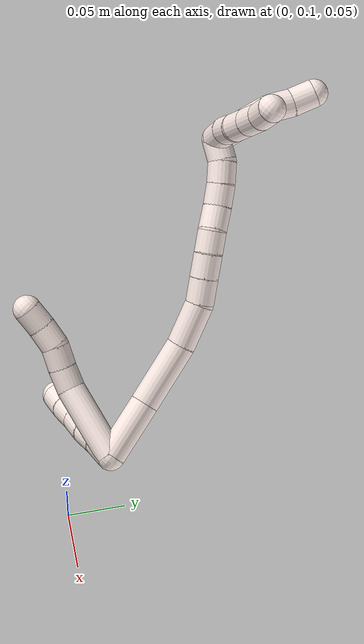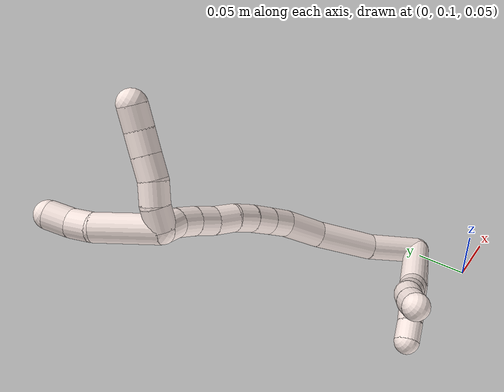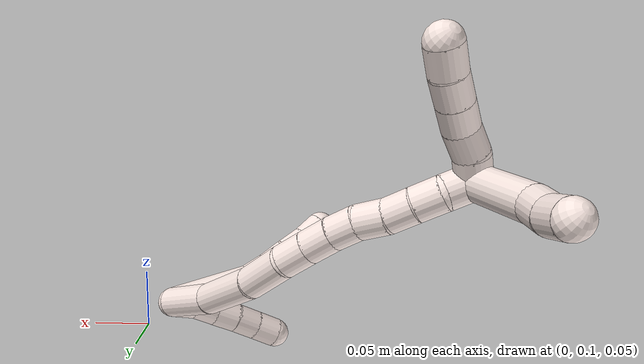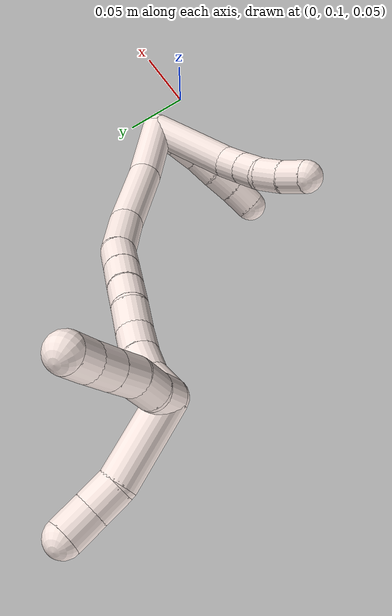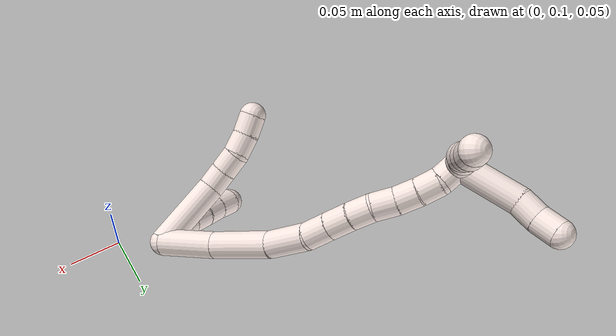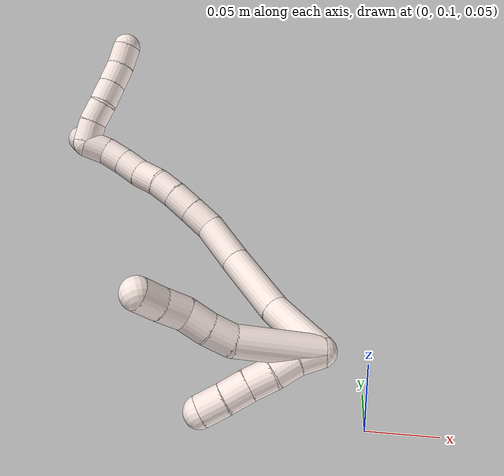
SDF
<sdf version="1.7">
 <world name="default">
  <model name="11">
   <static>0</static>
   <link name="11">
    <collision name="collision-cylinder-e_1_2_8">
     <pose>-0.031243 0.01158 0.008782 -0.921923 -1.1354 0.613458</pose>
     <geometry><cylinder><radius>0.0125</radius><length>0.068916</length></cylinder></geometry>
     <surface>
      <friction><ode><mu>1.16</mu><mu2>1.16</mu2><slip1>0</slip1><slip2>0</slip2></ode></friction>
      <contact><ode><kp>1e+06</kp><kd>1</kd><max_vel>0</max_vel><min_depth>0.001</min_depth></ode></contact>
     </surface>
    </collision>
    <visual name="visual-cylinder-e_1_2_8">
     <pose>-0.031243 0.01158 0.008782 -0.921923 -1.1354 0.613458</pose>
     <geometry><cylinder><radius>0.0125</radius><length>0.068916</length></cylinder></geometry>
     <material><ambient>1 0.933333 0.909804 1</ambient></material>
    </visual>
    <collision name="collision-cylinder-e_2_8_9">
     <pose>-0.07144 0.02428 0.022447 -0.225564 -1.06076 0.132646</pose>
     <geometry><cylinder><radius>0.0125</radius><length>0.02052</length></cylinder></geometry>
     <surface>
      <friction><ode><mu>1.16</mu><mu2>1.16</mu2><slip1>0</slip1><slip2>0</slip2></ode></friction>
      <contact><ode><kp>1e+06</kp><kd>1</kd><max_vel>0</max_vel><min_depth>0.001</min_depth></ode></contact>
     </surface>
    </collision>
    <visual name="visual-cylinder-e_2_8_9">
     <pose>-0.07144 0.02428 0.022447 -0.225564 -1.06076 0.132646</pose>
     <geometry><cylinder><radius>0.0125</radius><length>0.02052</length></cylinder></geometry>
     <material><ambient>1 0.933333 0.909804 1</ambient></material>
    </visual>
    <collision name="collision-cylinder-e_3_9_10">
     <pose>-0.088785 0.025749 0.032962 -0.061876 -0.978709 0.03296</pose>
     <geometry><cylinder><radius>0.0125</radius><length>0.020223</length></cylinder></geometry>
     <surface>
      <friction><ode><mu>1.16</mu><mu2>1.16</mu2><slip1>0</slip1><slip2>0</slip2></ode></friction>
      <contact><ode><kp>1e+06</kp><kd>1</kd><max_vel>0</max_vel><min_depth>0.001</min_depth></ode></contact>
     </surface>
    </collision>
    <visual name="visual-cylinder-e_3_9_10">
     <pose>-0.088785 0.025749 0.032962 -0.061876 -0.978709 0.03296</pose>
     <geometry><cylinder><radius>0.0125</radius><length>0.020223</length></cylinder></geometry>
     <material><ambient>1 0.933333 0.909804 1</ambient></material>
    </visual>
    <collision name="collision-cylinder-e_4_10_11">
     <pose>-0.10688 0.026364 0.04153 -0.090334 -1.2759 0.066991</pose>
     <geometry><cylinder><radius>0.0125</radius><length>0.020284</length></cylinder></geometry>
     <surface>
      <friction><ode><mu>1.16</mu><mu2>1.16</mu2><slip1>0</slip1><slip2>0</slip2></ode></friction>
      <contact><ode><kp>1e+06</kp><kd>1</kd><max_vel>0</max_vel><min_depth>0.001</min_depth></ode></contact>
     </surface>
    </collision>
    <visual name="visual-cylinder-e_4_10_11">
     <pose>-0.10688 0.026364 0.04153 -0.090334 -1.2759 0.066991</pose>
     <geometry><cylinder><radius>0.0125</radius><length>0.020284</length></cylinder></geometry>
     <material><ambient>1 0.933333 0.909804 1</ambient></material>
    </visual>
    <collision name="collision-cylinder-e_5_11_6">
     <pose>-0.126236 0.025678 0.047015 0.357173 -1.29597 -0.271619</pose>
     <geometry><cylinder><radius>0.0125</radius><length>0.020056</length></cylinder></geometry>
     <surface>
      <friction><ode><mu>1.16</mu><mu2>1.16</mu2><slip1>0</slip1><slip2>0</slip2></ode></friction>
      <contact><ode><kp>1e+06</kp><kd>1</kd><max_vel>0</max_vel><min_depth>0.001</min_depth></ode></contact>
     </surface>
    </collision>
    <visual name="visual-cylinder-e_5_11_6">
     <pose>-0.126236 0.025678 0.047015 0.357173 -1.29597 -0.271619</pose>
     <geometry><cylinder><radius>0.0125</radius><length>0.020056</length></cylinder></geometry>
     <material><ambient>1 0.933333 0.909804 1</ambient></material>
    </visual>
    <collision name="collision-cylinder-e_1_2_12">
     <pose>-0.007981 0.006002 -0.000531 -1.65907 -0.924098 0.996489</pose>
     <geometry><cylinder><radius>0.0125</radius><length>0.02</length></cylinder></geometry>
     <surface>
      <friction><ode><mu>1.16</mu><mu2>1.16</mu2><slip1>0</slip1><slip2>0</slip2></ode></friction>
      <contact><ode><kp>1e+06</kp><kd>1</kd><max_vel>0</max_vel><min_depth>0.001</min_depth></ode></contact>
     </surface>
    </collision>
    <visual name="visual-cylinder-e_1_2_12">
     <pose>-0.007981 0.006002 -0.000531 -1.65907 -0.924098 0.996489</pose>
     <geometry><cylinder><radius>0.0125</radius><length>0.02</length></cylinder></geometry>
     <material><ambient>1 0.933333 0.909804 1</ambient></material>
    </visual>
    <collision name="collision-cylinder-e_2_12_13">
     <pose>-0.022549 0.019211 -0.003225 -1.8623 -0.719131 0.935682</pose>
     <geometry><cylinder><radius>0.0125</radius><length>0.02</length></cylinder></geometry>
     <surface>
      <friction><ode><mu>1.16</mu><mu2>1.16</mu2><slip1>0</slip1><slip2>0</slip2></ode></friction>
      <contact><ode><kp>1e+06</kp><kd>1</kd><max_vel>0</max_vel><min_depth>0.001</min_depth></ode></contact>
     </surface>
    </collision>
    <visual name="visual-cylinder-e_2_12_13">
     <pose>-0.022549 0.019211 -0.003225 -1.8623 -0.719131 0.935682</pose>
     <geometry><cylinder><radius>0.0125</radius><length>0.02</length></cylinder></geometry>
     <material><ambient>1 0.933333 0.909804 1</ambient></material>
    </visual>
    <collision name="collision-cylinder-e_3_13_14">
     <pose>-0.035535 0.034035 -0.0064 -1.70303 -0.694333 0.783553</pose>
     <geometry><cylinder><radius>0.0125</radius><length>0.02</length></cylinder></geometry>
     <surface>
      <friction><ode><mu>1.16</mu><mu2>1.16</mu2><slip1>0</slip1><slip2>0</slip2></ode></friction>
      <contact><ode><kp>1e+06</kp><kd>1</kd><max_vel>0</max_vel><min_depth>0.001</min_depth></ode></contact>
     </surface>
    </collision>
    <visual name="visual-cylinder-e_3_13_14">
     <pose>-0.035535 0.034035 -0.0064 -1.70303 -0.694333 0.783553</pose>
     <geometry><cylinder><radius>0.0125</radius><length>0.02</length></cylinder></geometry>
     <material><ambient>1 0.933333 0.909804 1</ambient></material>
    </visual>
    <collision name="collision-cylinder-e_4_14_15">
     <pose>-0.048256 0.049196 -0.009181 -1.80093 -0.684426 0.844598</pose>
     <geometry><cylinder><radius>0.0125</radius><length>0.02</length></cylinder></geometry>
     <surface>
      <friction><ode><mu>1.16</mu><mu2>1.16</mu2><slip1>0</slip1><slip2>0</slip2></ode></friction>
      <contact><ode><kp>1e+06</kp><kd>1</kd><max_vel>0</max_vel><min_depth>0.001</min_depth></ode></contact>
     </surface>
    </collision>
    <visual name="visual-cylinder-e_4_14_15">
     <pose>-0.048256 0.049196 -0.009181 -1.80093 -0.684426 0.844598</pose>
     <geometry><cylinder><radius>0.0125</radius><length>0.02</length></cylinder></geometry>
     <material><ambient>1 0.933333 0.909804 1</ambient></material>
    </visual>
    <collision name="collision-cylinder-e_5_15_5">
     <pose>-0.060687 0.064574 -0.012088 -1.71531 -0.657207 0.75095</pose>
     <geometry><cylinder><radius>0.0125</radius><length>0.02</length></cylinder></geometry>
     <surface>
      <friction><ode><mu>1.16</mu><mu2>1.16</mu2><slip1>0</slip1><slip2>0</slip2></ode></friction>
      <contact><ode><kp>1e+06</kp><kd>1</kd><max_vel>0</max_vel><min_depth>0.001</min_depth></ode></contact>
     </surface>
    </collision>
    <visual name="visual-cylinder-e_5_15_5">
     <pose>-0.060687 0.064574 -0.012088 -1.71531 -0.657207 0.75095</pose>
     <geometry><cylinder><radius>0.0125</radius><length>0.02</length></cylinder></geometry>
     <material><ambient>1 0.933333 0.909804 1</ambient></material>
    </visual>
    <collision name="collision-cylinder-e_1_2_16">
     <pose>-0.002625 0.011196 0.024692 -0.425696 -0.096518 0.020875</pose>
     <geometry><cylinder><radius>0.0125</radius><length>0.054476</length></cylinder></geometry>
     <surface>
      <friction><ode><mu>1.16</mu><mu2>1.16</mu2><slip1>0</slip1><slip2>0</slip2></ode></friction>
      <contact><ode><kp>1e+06</kp><kd>1</kd><max_vel>0</max_vel><min_depth>0.001</min_depth></ode></contact>
     </surface>
    </collision>
    <visual name="visual-cylinder-e_1_2_16">
     <pose>-0.002625 0.011196 0.024692 -0.425696 -0.096518 0.020875</pose>
     <geometry><cylinder><radius>0.0125</radius><length>0.054476</length></cylinder></geometry>
     <material><ambient>1 0.933333 0.909804 1</ambient></material>
    </visual>
    <collision name="collision-cylinder-e_2_16_17">
     <pose>-0.008665 0.030273 0.078069 -0.268134 -0.114297 0.015432</pose>
     <geometry><cylinder><radius>0.0125</radius><length>0.059887</length></cylinder></geometry>
     <surface>
      <friction><ode><mu>1.16</mu><mu2>1.16</mu2><slip1>0</slip1><slip2>0</slip2></ode></friction>
      <contact><ode><kp>1e+06</kp><kd>1</kd><max_vel>0</max_vel><min_depth>0.001</min_depth></ode></contact>
     </surface>
    </collision>
    <visual name="visual-cylinder-e_2_16_17">
     <pose>-0.008665 0.030273 0.078069 -0.268134 -0.114297 0.015432</pose>
     <geometry><cylinder><radius>0.0125</radius><length>0.059887</length></cylinder></geometry>
     <material><ambient>1 0.933333 0.909804 1</ambient></material>
    </visual>
    <collision name="collision-cylinder-e_3_17_18">
     <pose>-0.017083 0.041077 0.125801 -0.152263 -0.254022 0.019481</pose>
     <geometry><cylinder><radius>0.0125</radius><length>0.039818</length></cylinder></geometry>
     <surface>
      <friction><ode><mu>1.16</mu><mu2>1.16</mu2><slip1>0</slip1><slip2>0</slip2></ode></friction>
      <contact><ode><kp>1e+06</kp><kd>1</kd><max_vel>0</max_vel><min_depth>0.001</min_depth></ode></contact>
     </surface>
    </collision>
    <visual name="visual-cylinder-e_3_17_18">
     <pose>-0.017083 0.041077 0.125801 -0.152263 -0.254022 0.019481</pose>
     <geometry><cylinder><radius>0.0125</radius><length>0.039818</length></cylinder></geometry>
     <material><ambient>1 0.933333 0.909804 1</ambient></material>
    </visual>
    <collision name="collision-cylinder-e_4_18_19">
     <pose>-0.027528 0.046054 0.154479 -0.210166 -0.504819 0.054391</pose>
     <geometry><cylinder><radius>0.0125</radius><length>0.022503</length></cylinder></geometry>
     <surface>
      <friction><ode><mu>1.16</mu><mu2>1.16</mu2><slip1>0</slip1><slip2>0</slip2></ode></friction>
      <contact><ode><kp>1e+06</kp><kd>1</kd><max_vel>0</max_vel><min_depth>0.001</min_depth></ode></contact>
     </surface>
    </collision>
    <visual name="visual-cylinder-e_4_18_19">
     <pose>-0.027528 0.046054 0.154479 -0.210166 -0.504819 0.054391</pose>
     <geometry><cylinder><radius>0.0125</radius><length>0.022503</length></cylinder></geometry>
     <material><ambient>1 0.933333 0.909804 1</ambient></material>
    </visual>
    <collision name="collision-cylinder-e_5_19_20">
     <pose>-0.038149 0.050266 0.173386 -0.228518 -0.498143 0.058362</pose>
     <geometry><cylinder><radius>0.0125</radius><length>0.021681</length></cylinder></geometry>
     <surface>
      <friction><ode><mu>1.16</mu><mu2>1.16</mu2><slip1>0</slip1><slip2>0</slip2></ode></friction>
      <contact><ode><kp>1e+06</kp><kd>1</kd><max_vel>0</max_vel><min_depth>0.001</min_depth></ode></contact>
     </surface>
    </collision>
    <visual name="visual-cylinder-e_5_19_20">
     <pose>-0.038149 0.050266 0.173386 -0.228518 -0.498143 0.058362</pose>
     <geometry><cylinder><radius>0.0125</radius><length>0.021681</length></cylinder></geometry>
     <material><ambient>1 0.933333 0.909804 1</ambient></material>
    </visual>
    <collision name="collision-cylinder-e_6_20_21">
     <pose>-0.048125 0.05515 0.191049 -0.314373 -0.49808 0.080573</pose>
     <geometry><cylinder><radius>0.0125</radius><length>0.020077</length></cylinder></geometry>
     <surface>
      <friction><ode><mu>1.16</mu><mu2>1.16</mu2><slip1>0</slip1><slip2>0</slip2></ode></friction>
      <contact><ode><kp>1e+06</kp><kd>1</kd><max_vel>0</max_vel><min_depth>0.001</min_depth></ode></contact>
     </surface>
    </collision>
    <visual name="visual-cylinder-e_6_20_21">
     <pose>-0.048125 0.05515 0.191049 -0.314373 -0.49808 0.080573</pose>
     <geometry><cylinder><radius>0.0125</radius><length>0.020077</length></cylinder></geometry>
     <material><ambient>1 0.933333 0.909804 1</ambient></material>
    </visual>
    <collision name="collision-cylinder-e_7_21_22">
     <pose>-0.05755 0.06279 0.207826 -0.529732 -0.444409 0.122412</pose>
     <geometry><cylinder><radius>0.0125</radius><length>0.021538</length></cylinder></geometry>
     <surface>
      <friction><ode><mu>1.16</mu><mu2>1.16</mu2><slip1>0</slip1><slip2>0</slip2></ode></friction>
      <contact><ode><kp>1e+06</kp><kd>1</kd><max_vel>0</max_vel><min_depth>0.001</min_depth></ode></contact>
     </surface>
    </collision>
    <visual name="visual-cylinder-e_7_21_22">
     <pose>-0.05755 0.06279 0.207826 -0.529732 -0.444409 0.122412</pose>
     <geometry><cylinder><radius>0.0125</radius><length>0.021538</length></cylinder></geometry>
     <material><ambient>1 0.933333 0.909804 1</ambient></material>
    </visual>
    <collision name="collision-cylinder-e_8_22_23">
     <pose>-0.067063 0.070674 0.224423 -0.347312 -0.510017 0.091396</pose>
     <geometry><cylinder><radius>0.0125</radius><length>0.020002</length></cylinder></geometry>
     <surface>
      <friction><ode><mu>1.16</mu><mu2>1.16</mu2><slip1>0</slip1><slip2>0</slip2></ode></friction>
      <contact><ode><kp>1e+06</kp><kd>1</kd><max_vel>0</max_vel><min_depth>0.001</min_depth></ode></contact>
     </surface>
    </collision>
    <visual name="visual-cylinder-e_8_22_23">
     <pose>-0.067063 0.070674 0.224423 -0.347312 -0.510017 0.091396</pose>
     <geometry><cylinder><radius>0.0125</radius><length>0.020002</length></cylinder></geometry>
     <material><ambient>1 0.933333 0.909804 1</ambient></material>
    </visual>
    <collision name="collision-cylinder-e_9_23_24">
     <pose>-0.07768 0.076709 0.240238 -0.382895 -0.610252 0.121941</pose>
     <geometry><cylinder><radius>0.0125</radius><length>0.020015</length></cylinder></geometry>
     <surface>
      <friction><ode><mu>1.16</mu><mu2>1.16</mu2><slip1>0</slip1><slip2>0</slip2></ode></friction>
      <contact><ode><kp>1e+06</kp><kd>1</kd><max_vel>0</max_vel><min_depth>0.001</min_depth></ode></contact>
     </surface>
    </collision>
    <visual name="visual-cylinder-e_9_23_24">
     <pose>-0.07768 0.076709 0.240238 -0.382895 -0.610252 0.121941</pose>
     <geometry><cylinder><radius>0.0125</radius><length>0.020015</length></cylinder></geometry>
     <material><ambient>1 0.933333 0.909804 1</ambient></material>
    </visual>
    <collision name="collision-cylinder-e_10_24_1">
     <pose>-0.091407 0.082791 0.253045 -0.525832 -0.925849 0.267061</pose>
     <geometry><cylinder><radius>0.0125</radius><length>0.020002</length></cylinder></geometry>
     <surface>
      <friction><ode><mu>1.16</mu><mu2>1.16</mu2><slip1>0</slip1><slip2>0</slip2></ode></friction>
      <contact><ode><kp>1e+06</kp><kd>1</kd><max_vel>0</max_vel><min_depth>0.001</min_depth></ode></contact>
     </surface>
    </collision>
    <visual name="visual-cylinder-e_10_24_1">
     <pose>-0.091407 0.082791 0.253045 -0.525832 -0.925849 0.267061</pose>
     <geometry><cylinder><radius>0.0125</radius><length>0.020002</length></cylinder></geometry>
     <material><ambient>1 0.933333 0.909804 1</ambient></material>
    </visual>
    <collision name="collision-cylinder-e_1_1_25">
     <pose>-0.089137 0.102334 0.279617 -0.658204 0.363044 -0.125204</pose>
     <geometry><cylinder><radius>0.0125</radius><length>0.057798</length></cylinder></geometry>
     <surface>
      <friction><ode><mu>1.16</mu><mu2>1.16</mu2><slip1>0</slip1><slip2>0</slip2></ode></friction>
      <contact><ode><kp>1e+06</kp><kd>1</kd><max_vel>0</max_vel><min_depth>0.001</min_depth></ode></contact>
     </surface>
    </collision>
    <visual name="visual-cylinder-e_1_1_25">
     <pose>-0.089137 0.102334 0.279617 -0.658204 0.363044 -0.125204</pose>
     <geometry><cylinder><radius>0.0125</radius><length>0.057798</length></cylinder></geometry>
     <material><ambient>1 0.933333 0.909804 1</ambient></material>
    </visual>
    <collision name="collision-cylinder-e_2_25_26">
     <pose>-0.072867 0.123564 0.307943 -0.594769 0.620972 -0.196041</pose>
     <geometry><cylinder><radius>0.0125</radius><length>0.020648</length></cylinder></geometry>
     <surface>
      <friction><ode><mu>1.16</mu><mu2>1.16</mu2><slip1>0</slip1><slip2>0</slip2></ode></friction>
      <contact><ode><kp>1e+06</kp><kd>1</kd><max_vel>0</max_vel><min_depth>0.001</min_depth></ode></contact>
     </surface>
    </collision>
    <visual name="visual-cylinder-e_2_25_26">
     <pose>-0.072867 0.123564 0.307943 -0.594769 0.620972 -0.196041</pose>
     <geometry><cylinder><radius>0.0125</radius><length>0.020648</length></cylinder></geometry>
     <material><ambient>1 0.933333 0.909804 1</ambient></material>
    </visual>
    <collision name="collision-cylinder-e_3_26_4">
     <pose>-0.061763 0.131603 0.323788 -0.358846 0.49267 -0.091146</pose>
     <geometry><cylinder><radius>0.0125</radius><length>0.021554</length></cylinder></geometry>
     <surface>
      <friction><ode><mu>1.16</mu><mu2>1.16</mu2><slip1>0</slip1><slip2>0</slip2></ode></friction>
      <contact><ode><kp>1e+06</kp><kd>1</kd><max_vel>0</max_vel><min_depth>0.001</min_depth></ode></contact>
     </surface>
    </collision>
    <visual name="visual-cylinder-e_3_26_4">
     <pose>-0.061763 0.131603 0.323788 -0.358846 0.49267 -0.091146</pose>
     <geometry><cylinder><radius>0.0125</radius><length>0.021554</length></cylinder></geometry>
     <material><ambient>1 0.933333 0.909804 1</ambient></material>
    </visual>
    <collision name="collision-cylinder-e_1_1_27">
     <pose>-0.098665 0.079022 0.265553 0.748374 0.073476 0.028864</pose>
     <geometry><cylinder><radius>0.0125</radius><length>0.02</length></cylinder></geometry>
     <surface>
      <friction><ode><mu>1.16</mu><mu2>1.16</mu2><slip1>0</slip1><slip2>0</slip2></ode></friction>
      <contact><ode><kp>1e+06</kp><kd>1</kd><max_vel>0</max_vel><min_depth>0.001</min_depth></ode></contact>
     </surface>
    </collision>
    <visual name="visual-cylinder-e_1_1_27">
     <pose>-0.098665 0.079022 0.265553 0.748374 0.073476 0.028864</pose>
     <geometry><cylinder><radius>0.0125</radius><length>0.02</length></cylinder></geometry>
     <material><ambient>1 0.933333 0.909804 1</ambient></material>
    </visual>
    <collision name="collision-cylinder-e_2_27_28">
     <pose>-0.095915 0.064263 0.27855 0.951039 0.202977 0.104783</pose>
     <geometry><cylinder><radius>0.0125</radius><length>0.02</length></cylinder></geometry>
     <surface>
      <friction><ode><mu>1.16</mu><mu2>1.16</mu2><slip1>0</slip1><slip2>0</slip2></ode></friction>
      <contact><ode><kp>1e+06</kp><kd>1</kd><max_vel>0</max_vel><min_depth>0.001</min_depth></ode></contact>
     </surface>
    </collision>
    <visual name="visual-cylinder-e_2_27_28">
     <pose>-0.095915 0.064263 0.27855 0.951039 0.202977 0.104783</pose>
     <geometry><cylinder><radius>0.0125</radius><length>0.02</length></cylinder></geometry>
     <material><ambient>1 0.933333 0.909804 1</ambient></material>
    </visual>
    <collision name="collision-cylinder-e_3_28_29">
     <pose>-0.091287 0.049795 0.29138 0.738179 0.264359 0.102768</pose>
     <geometry><cylinder><radius>0.0125</radius><length>0.02</length></cylinder></geometry>
     <surface>
      <friction><ode><mu>1.16</mu><mu2>1.16</mu2><slip1>0</slip1><slip2>0</slip2></ode></friction>
      <contact><ode><kp>1e+06</kp><kd>1</kd><max_vel>0</max_vel><min_depth>0.001</min_depth></ode></contact>
     </surface>
    </collision>
    <visual name="visual-cylinder-e_3_28_29">
     <pose>-0.091287 0.049795 0.29138 0.738179 0.264359 0.102768</pose>
     <geometry><cylinder><radius>0.0125</radius><length>0.02</length></cylinder></geometry>
     <material><ambient>1 0.933333 0.909804 1</ambient></material>
    </visual>
    <collision name="collision-cylinder-e_4_29_30">
     <pose>-0.086176 0.036704 0.30561 0.749207 0.252488 0.099719</pose>
     <geometry><cylinder><radius>0.0125</radius><length>0.02</length></cylinder></geometry>
     <surface>
      <friction><ode><mu>1.16</mu><mu2>1.16</mu2><slip1>0</slip1><slip2>0</slip2></ode></friction>
      <contact><ode><kp>1e+06</kp><kd>1</kd><max_vel>0</max_vel><min_depth>0.001</min_depth></ode></contact>
     </surface>
    </collision>
    <visual name="visual-cylinder-e_4_29_30">
     <pose>-0.086176 0.036704 0.30561 0.749207 0.252488 0.099719</pose>
     <geometry><cylinder><radius>0.0125</radius><length>0.02</length></cylinder></geometry>
     <material><ambient>1 0.933333 0.909804 1</ambient></material>
    </visual>
    <collision name="collision-cylinder-e_5_30_3">
     <pose>-0.082377 0.023353 0.319956 0.749785 0.130398 0.051373</pose>
     <geometry><cylinder><radius>0.0125</radius><length>0.02</length></cylinder></geometry>
     <surface>
      <friction><ode><mu>1.16</mu><mu2>1.16</mu2><slip1>0</slip1><slip2>0</slip2></ode></friction>
      <contact><ode><kp>1e+06</kp><kd>1</kd><max_vel>0</max_vel><min_depth>0.001</min_depth></ode></contact>
     </surface>
    </collision>
    <visual name="visual-cylinder-e_5_30_3">
     <pose>-0.082377 0.023353 0.319956 0.749785 0.130398 0.051373</pose>
     <geometry><cylinder><radius>0.0125</radius><length>0.02</length></cylinder></geometry>
     <material><ambient>1 0.933333 0.909804 1</ambient></material>
    </visual>
    <collision name="collision-sphere-3">
     <pose>-0.081077 0.016596 0.327212 0 -0 0</pose>
     <geometry><sphere><radius>0.0125</radius></sphere></geometry>
     <surface>
      <friction><ode><mu>1.16</mu><mu2>1.16</mu2><slip1>0</slip1><slip2>0</slip2></ode></friction>
      <contact><ode><kp>1e+06</kp><kd>1</kd><max_vel>0</max_vel><min_depth>0.001</min_depth></ode></contact>
     </surface>
    </collision>
    <visual name="visual-sphere-3">
     <pose>-0.081077 0.016596 0.327212 0 -0 0</pose>
     <geometry><sphere><radius>0.0125</radius></sphere></geometry>
     <material><ambient>1 0.933333 0.909804 1</ambient></material>
    </visual>
    <collision name="collision-sphere-30">
     <pose>-0.083677 0.03011 0.3127 0 -0 0</pose>
     <geometry><sphere><radius>0.0125</radius></sphere></geometry>
     <surface>
      <friction><ode><mu>1.16</mu><mu2>1.16</mu2><slip1>0</slip1><slip2>0</slip2></ode></friction>
      <contact><ode><kp>1e+06</kp><kd>1</kd><max_vel>0</max_vel><min_depth>0.001</min_depth></ode></contact>
     </surface>
    </collision>
    <visual name="visual-sphere-30">
     <pose>-0.083677 0.03011 0.3127 0 -0 0</pose>
     <geometry><sphere><radius>0.0125</radius></sphere></geometry>
     <material><ambient>1 0.933333 0.909804 1</ambient></material>
    </visual>
    <collision name="collision-sphere-29">
     <pose>-0.088674 0.043299 0.29852 0 -0 0</pose>
     <geometry><sphere><radius>0.0125</radius></sphere></geometry>
     <surface>
      <friction><ode><mu>1.16</mu><mu2>1.16</mu2><slip1>0</slip1><slip2>0</slip2></ode></friction>
      <contact><ode><kp>1e+06</kp><kd>1</kd><max_vel>0</max_vel><min_depth>0.001</min_depth></ode></contact>
     </surface>
    </collision>
    <visual name="visual-sphere-29">
     <pose>-0.088674 0.043299 0.29852 0 -0 0</pose>
     <geometry><sphere><radius>0.0125</radius></sphere></geometry>
     <material><ambient>1 0.933333 0.909804 1</ambient></material>
    </visual>
    <collision name="collision-sphere-28">
     <pose>-0.093899 0.05629 0.28424 0 -0 0</pose>
     <geometry><sphere><radius>0.0125</radius></sphere></geometry>
     <surface>
      <friction><ode><mu>1.16</mu><mu2>1.16</mu2><slip1>0</slip1><slip2>0</slip2></ode></friction>
      <contact><ode><kp>1e+06</kp><kd>1</kd><max_vel>0</max_vel><min_depth>0.001</min_depth></ode></contact>
     </surface>
    </collision>
    <visual name="visual-sphere-28">
     <pose>-0.093899 0.05629 0.28424 0 -0 0</pose>
     <geometry><sphere><radius>0.0125</radius></sphere></geometry>
     <material><ambient>1 0.933333 0.909804 1</ambient></material>
    </visual>
    <collision name="collision-sphere-27">
     <pose>-0.097931 0.072236 0.272861 0 -0 0</pose>
     <geometry><sphere><radius>0.0125</radius></sphere></geometry>
     <surface>
      <friction><ode><mu>1.16</mu><mu2>1.16</mu2><slip1>0</slip1><slip2>0</slip2></ode></friction>
      <contact><ode><kp>1e+06</kp><kd>1</kd><max_vel>0</max_vel><min_depth>0.001</min_depth></ode></contact>
     </surface>
    </collision>
    <visual name="visual-sphere-27">
     <pose>-0.097931 0.072236 0.272861 0 -0 0</pose>
     <geometry><sphere><radius>0.0125</radius></sphere></geometry>
     <material><ambient>1 0.933333 0.909804 1</ambient></material>
    </visual>
    <collision name="collision-sphere-4">
     <pose>-0.056666 0.134938 0.332679 0 -0 0</pose>
     <geometry><sphere><radius>0.0125</radius></sphere></geometry>
     <surface>
      <friction><ode><mu>1.16</mu><mu2>1.16</mu2><slip1>0</slip1><slip2>0</slip2></ode></friction>
      <contact><ode><kp>1e+06</kp><kd>1</kd><max_vel>0</max_vel><min_depth>0.001</min_depth></ode></contact>
     </surface>
    </collision>
    <visual name="visual-sphere-4">
     <pose>-0.056666 0.134938 0.332679 0 -0 0</pose>
     <geometry><sphere><radius>0.0125</radius></sphere></geometry>
     <material><ambient>1 0.933333 0.909804 1</ambient></material>
    </visual>
    <collision name="collision-sphere-26">
     <pose>-0.06686 0.128269 0.314898 0 -0 0</pose>
     <geometry><sphere><radius>0.0125</radius></sphere></geometry>
     <surface>
      <friction><ode><mu>1.16</mu><mu2>1.16</mu2><slip1>0</slip1><slip2>0</slip2></ode></friction>
      <contact><ode><kp>1e+06</kp><kd>1</kd><max_vel>0</max_vel><min_depth>0.001</min_depth></ode></contact>
     </surface>
    </collision>
    <visual name="visual-sphere-26">
     <pose>-0.06686 0.128269 0.314898 0 -0 0</pose>
     <geometry><sphere><radius>0.0125</radius></sphere></geometry>
     <material><ambient>1 0.933333 0.909804 1</ambient></material>
    </visual>
    <collision name="collision-sphere-25">
     <pose>-0.078874 0.118859 0.300988 0 -0 0</pose>
     <geometry><sphere><radius>0.0125</radius></sphere></geometry>
     <surface>
      <friction><ode><mu>1.16</mu><mu2>1.16</mu2><slip1>0</slip1><slip2>0</slip2></ode></friction>
      <contact><ode><kp>1e+06</kp><kd>1</kd><max_vel>0</max_vel><min_depth>0.001</min_depth></ode></contact>
     </surface>
    </collision>
    <visual name="visual-sphere-25">
     <pose>-0.078874 0.118859 0.300988 0 -0 0</pose>
     <geometry><sphere><radius>0.0125</radius></sphere></geometry>
     <material><ambient>1 0.933333 0.909804 1</ambient></material>
    </visual>
    <collision name="collision-sphere-1">
     <pose>-0.099399 0.085809 0.258245 0 -0 0</pose>
     <geometry><sphere><radius>0.0125</radius></sphere></geometry>
     <surface>
      <friction><ode><mu>1.16</mu><mu2>1.16</mu2><slip1>0</slip1><slip2>0</slip2></ode></friction>
      <contact><ode><kp>1e+06</kp><kd>1</kd><max_vel>0</max_vel><min_depth>0.001</min_depth></ode></contact>
     </surface>
    </collision>
    <visual name="visual-sphere-1">
     <pose>-0.099399 0.085809 0.258245 0 -0 0</pose>
     <geometry><sphere><radius>0.0125</radius></sphere></geometry>
     <material><ambient>1 0.933333 0.909804 1</ambient></material>
    </visual>
    <collision name="collision-sphere-24">
     <pose>-0.083415 0.079773 0.247845 0 -0 0</pose>
     <geometry><sphere><radius>0.0125</radius></sphere></geometry>
     <surface>
      <friction><ode><mu>1.16</mu><mu2>1.16</mu2><slip1>0</slip1><slip2>0</slip2></ode></friction>
      <contact><ode><kp>1e+06</kp><kd>1</kd><max_vel>0</max_vel><min_depth>0.001</min_depth></ode></contact>
     </surface>
    </collision>
    <visual name="visual-sphere-24">
     <pose>-0.083415 0.079773 0.247845 0 -0 0</pose>
     <geometry><sphere><radius>0.0125</radius></sphere></geometry>
     <material><ambient>1 0.933333 0.909804 1</ambient></material>
    </visual>
    <collision name="collision-sphere-23">
     <pose>-0.071945 0.073645 0.23263 0 -0 0</pose>
     <geometry><sphere><radius>0.0125</radius></sphere></geometry>
     <surface>
      <friction><ode><mu>1.16</mu><mu2>1.16</mu2><slip1>0</slip1><slip2>0</slip2></ode></friction>
      <contact><ode><kp>1e+06</kp><kd>1</kd><max_vel>0</max_vel><min_depth>0.001</min_depth></ode></contact>
     </surface>
    </collision>
    <visual name="visual-sphere-23">
     <pose>-0.071945 0.073645 0.23263 0 -0 0</pose>
     <geometry><sphere><radius>0.0125</radius></sphere></geometry>
     <material><ambient>1 0.933333 0.909804 1</ambient></material>
    </visual>
    <collision name="collision-sphere-22">
     <pose>-0.06218 0.067703 0.216216 0 -0 0</pose>
     <geometry><sphere><radius>0.0125</radius></sphere></geometry>
     <surface>
      <friction><ode><mu>1.16</mu><mu2>1.16</mu2><slip1>0</slip1><slip2>0</slip2></ode></friction>
      <contact><ode><kp>1e+06</kp><kd>1</kd><max_vel>0</max_vel><min_depth>0.001</min_depth></ode></contact>
     </surface>
    </collision>
    <visual name="visual-sphere-22">
     <pose>-0.06218 0.067703 0.216216 0 -0 0</pose>
     <geometry><sphere><radius>0.0125</radius></sphere></geometry>
     <material><ambient>1 0.933333 0.909804 1</ambient></material>
    </visual>
    <collision name="collision-sphere-21">
     <pose>-0.05292 0.057877 0.199435 0 -0 0</pose>
     <geometry><sphere><radius>0.0125</radius></sphere></geometry>
     <surface>
      <friction><ode><mu>1.16</mu><mu2>1.16</mu2><slip1>0</slip1><slip2>0</slip2></ode></friction>
      <contact><ode><kp>1e+06</kp><kd>1</kd><max_vel>0</max_vel><min_depth>0.001</min_depth></ode></contact>
     </surface>
    </collision>
    <visual name="visual-sphere-21">
     <pose>-0.05292 0.057877 0.199435 0 -0 0</pose>
     <geometry><sphere><radius>0.0125</radius></sphere></geometry>
     <material><ambient>1 0.933333 0.909804 1</ambient></material>
    </visual>
    <collision name="collision-sphere-6">
     <pose>-0.135888 0.024727 0.049565 0 -0 0</pose>
     <geometry><sphere><radius>0.0125</radius></sphere></geometry>
     <surface>
      <friction><ode><mu>1.16</mu><mu2>1.16</mu2><slip1>0</slip1><slip2>0</slip2></ode></friction>
      <contact><ode><kp>1e+06</kp><kd>1</kd><max_vel>0</max_vel><min_depth>0.001</min_depth></ode></contact>
     </surface>
    </collision>
    <visual name="visual-sphere-6">
     <pose>-0.135888 0.024727 0.049565 0 -0 0</pose>
     <geometry><sphere><radius>0.0125</radius></sphere></geometry>
     <material><ambient>1 0.933333 0.909804 1</ambient></material>
    </visual>
    <collision name="collision-sphere-11">
     <pose>-0.116584 0.02663 0.044465 0 -0 0</pose>
     <geometry><sphere><radius>0.0125</radius></sphere></geometry>
     <surface>
      <friction><ode><mu>1.16</mu><mu2>1.16</mu2><slip1>0</slip1><slip2>0</slip2></ode></friction>
      <contact><ode><kp>1e+06</kp><kd>1</kd><max_vel>0</max_vel><min_depth>0.001</min_depth></ode></contact>
     </surface>
    </collision>
    <visual name="visual-sphere-11">
     <pose>-0.116584 0.02663 0.044465 0 -0 0</pose>
     <geometry><sphere><radius>0.0125</radius></sphere></geometry>
     <material><ambient>1 0.933333 0.909804 1</ambient></material>
    </visual>
    <collision name="collision-sphere-10">
     <pose>-0.097175 0.026098 0.038594 0 -0 0</pose>
     <geometry><sphere><radius>0.0125</radius></sphere></geometry>
     <surface>
      <friction><ode><mu>1.16</mu><mu2>1.16</mu2><slip1>0</slip1><slip2>0</slip2></ode></friction>
      <contact><ode><kp>1e+06</kp><kd>1</kd><max_vel>0</max_vel><min_depth>0.001</min_depth></ode></contact>
     </surface>
    </collision>
    <visual name="visual-sphere-10">
     <pose>-0.097175 0.026098 0.038594 0 -0 0</pose>
     <geometry><sphere><radius>0.0125</radius></sphere></geometry>
     <material><ambient>1 0.933333 0.909804 1</ambient></material>
    </visual>
    <collision name="collision-sphere-9">
     <pose>-0.080395 0.0254 0.027329 0 -0 0</pose>
     <geometry><sphere><radius>0.0125</radius></sphere></geometry>
     <surface>
      <friction><ode><mu>1.16</mu><mu2>1.16</mu2><slip1>0</slip1><slip2>0</slip2></ode></friction>
      <contact><ode><kp>1e+06</kp><kd>1</kd><max_vel>0</max_vel><min_depth>0.001</min_depth></ode></contact>
     </surface>
    </collision>
    <visual name="visual-sphere-9">
     <pose>-0.080395 0.0254 0.027329 0 -0 0</pose>
     <geometry><sphere><radius>0.0125</radius></sphere></geometry>
     <material><ambient>1 0.933333 0.909804 1</ambient></material>
    </visual>
    <collision name="collision-sphere-2">
     <geometry><sphere><radius>0.0125</radius></sphere></geometry>
     <surface>
      <friction><ode><mu>1.16</mu><mu2>1.16</mu2><slip1>0</slip1><slip2>0</slip2></ode></friction>
      <contact><ode><kp>1e+06</kp><kd>1</kd><max_vel>0</max_vel><min_depth>0.001</min_depth></ode></contact>
     </surface>
    </collision>
    <visual name="visual-sphere-2">
     <geometry><sphere><radius>0.0125</radius></sphere></geometry>
     <material><ambient>1 0.933333 0.909804 1</ambient></material>
    </visual>
    <collision name="collision-sphere-19">
     <pose>-0.03297 0.048109 0.164111 0 -0 0</pose>
     <geometry><sphere><radius>0.0125</radius></sphere></geometry>
     <surface>
      <friction><ode><mu>1.16</mu><mu2>1.16</mu2><slip1>0</slip1><slip2>0</slip2></ode></friction>
      <contact><ode><kp>1e+06</kp><kd>1</kd><max_vel>0</max_vel><min_depth>0.001</min_depth></ode></contact>
     </surface>
    </collision>
    <visual name="visual-sphere-19">
     <pose>-0.03297 0.048109 0.164111 0 -0 0</pose>
     <geometry><sphere><radius>0.0125</radius></sphere></geometry>
     <material><ambient>1 0.933333 0.909804 1</ambient></material>
    </visual>
    <collision name="collision-sphere-8">
     <pose>-0.062486 0.023159 0.017565 0 -0 0</pose>
     <geometry><sphere><radius>0.0125</radius></sphere></geometry>
     <surface>
      <friction><ode><mu>1.16</mu><mu2>1.16</mu2><slip1>0</slip1><slip2>0</slip2></ode></friction>
      <contact><ode><kp>1e+06</kp><kd>1</kd><max_vel>0</max_vel><min_depth>0.001</min_depth></ode></contact>
     </surface>
    </collision>
    <visual name="visual-sphere-8">
     <pose>-0.062486 0.023159 0.017565 0 -0 0</pose>
     <geometry><sphere><radius>0.0125</radius></sphere></geometry>
     <material><ambient>1 0.933333 0.909804 1</ambient></material>
    </visual>
    <collision name="collision-sphere-12">
     <pose>-0.015962 0.012004 -0.001062 0 -0 0</pose>
     <geometry><sphere><radius>0.0125</radius></sphere></geometry>
     <surface>
      <friction><ode><mu>1.16</mu><mu2>1.16</mu2><slip1>0</slip1><slip2>0</slip2></ode></friction>
      <contact><ode><kp>1e+06</kp><kd>1</kd><max_vel>0</max_vel><min_depth>0.001</min_depth></ode></contact>
     </surface>
    </collision>
    <visual name="visual-sphere-12">
     <pose>-0.015962 0.012004 -0.001062 0 -0 0</pose>
     <geometry><sphere><radius>0.0125</radius></sphere></geometry>
     <material><ambient>1 0.933333 0.909804 1</ambient></material>
    </visual>
    <collision name="collision-sphere-13">
     <pose>-0.029136 0.026417 -0.005387 0 -0 0</pose>
     <geometry><sphere><radius>0.0125</radius></sphere></geometry>
     <surface>
      <friction><ode><mu>1.16</mu><mu2>1.16</mu2><slip1>0</slip1><slip2>0</slip2></ode></friction>
      <contact><ode><kp>1e+06</kp><kd>1</kd><max_vel>0</max_vel><min_depth>0.001</min_depth></ode></contact>
     </surface>
    </collision>
    <visual name="visual-sphere-13">
     <pose>-0.029136 0.026417 -0.005387 0 -0 0</pose>
     <geometry><sphere><radius>0.0125</radius></sphere></geometry>
     <material><ambient>1 0.933333 0.909804 1</ambient></material>
    </visual>
    <collision name="collision-sphere-14">
     <pose>-0.041934 0.041652 -0.007413 0 -0 0</pose>
     <geometry><sphere><radius>0.0125</radius></sphere></geometry>
     <surface>
      <friction><ode><mu>1.16</mu><mu2>1.16</mu2><slip1>0</slip1><slip2>0</slip2></ode></friction>
      <contact><ode><kp>1e+06</kp><kd>1</kd><max_vel>0</max_vel><min_depth>0.001</min_depth></ode></contact>
     </surface>
    </collision>
    <visual name="visual-sphere-14">
     <pose>-0.041934 0.041652 -0.007413 0 -0 0</pose>
     <geometry><sphere><radius>0.0125</radius></sphere></geometry>
     <material><ambient>1 0.933333 0.909804 1</ambient></material>
    </visual>
    <collision name="collision-sphere-15">
     <pose>-0.054578 0.05674 -0.010948 0 -0 0</pose>
     <geometry><sphere><radius>0.0125</radius></sphere></geometry>
     <surface>
      <friction><ode><mu>1.16</mu><mu2>1.16</mu2><slip1>0</slip1><slip2>0</slip2></ode></friction>
      <contact><ode><kp>1e+06</kp><kd>1</kd><max_vel>0</max_vel><min_depth>0.001</min_depth></ode></contact>
     </surface>
    </collision>
    <visual name="visual-sphere-15">
     <pose>-0.054578 0.05674 -0.010948 0 -0 0</pose>
     <geometry><sphere><radius>0.0125</radius></sphere></geometry>
     <material><ambient>1 0.933333 0.909804 1</ambient></material>
    </visual>
    <collision name="collision-sphere-5">
     <pose>-0.066796 0.072408 -0.013228 0 -0 0</pose>
     <geometry><sphere><radius>0.0125</radius></sphere></geometry>
     <surface>
      <friction><ode><mu>1.16</mu><mu2>1.16</mu2><slip1>0</slip1><slip2>0</slip2></ode></friction>
      <contact><ode><kp>1e+06</kp><kd>1</kd><max_vel>0</max_vel><min_depth>0.001</min_depth></ode></contact>
     </surface>
    </collision>
    <visual name="visual-sphere-5">
     <pose>-0.066796 0.072408 -0.013228 0 -0 0</pose>
     <geometry><sphere><radius>0.0125</radius></sphere></geometry>
     <material><ambient>1 0.933333 0.909804 1</ambient></material>
    </visual>
    <collision name="collision-sphere-16">
     <pose>-0.00525 0.022392 0.049384 0 -0 0</pose>
     <geometry><sphere><radius>0.0125</radius></sphere></geometry>
     <surface>
      <friction><ode><mu>1.16</mu><mu2>1.16</mu2><slip1>0</slip1><slip2>0</slip2></ode></friction>
      <contact><ode><kp>1e+06</kp><kd>1</kd><max_vel>0</max_vel><min_depth>0.001</min_depth></ode></contact>
     </surface>
    </collision>
    <visual name="visual-sphere-16">
     <pose>-0.00525 0.022392 0.049384 0 -0 0</pose>
     <geometry><sphere><radius>0.0125</radius></sphere></geometry>
     <material><ambient>1 0.933333 0.909804 1</ambient></material>
    </visual>
    <collision name="collision-sphere-17">
     <pose>-0.01208 0.038154 0.106754 0 -0 0</pose>
     <geometry><sphere><radius>0.0125</radius></sphere></geometry>
     <surface>
      <friction><ode><mu>1.16</mu><mu2>1.16</mu2><slip1>0</slip1><slip2>0</slip2></ode></friction>
      <contact><ode><kp>1e+06</kp><kd>1</kd><max_vel>0</max_vel><min_depth>0.001</min_depth></ode></contact>
     </surface>
    </collision>
    <visual name="visual-sphere-17">
     <pose>-0.01208 0.038154 0.106754 0 -0 0</pose>
     <geometry><sphere><radius>0.0125</radius></sphere></geometry>
     <material><ambient>1 0.933333 0.909804 1</ambient></material>
    </visual>
    <collision name="collision-sphere-18">
     <pose>-0.022086 0.044 0.144848 0 -0 0</pose>
     <geometry><sphere><radius>0.0125</radius></sphere></geometry>
     <surface>
      <friction><ode><mu>1.16</mu><mu2>1.16</mu2><slip1>0</slip1><slip2>0</slip2></ode></friction>
      <contact><ode><kp>1e+06</kp><kd>1</kd><max_vel>0</max_vel><min_depth>0.001</min_depth></ode></contact>
     </surface>
    </collision>
    <visual name="visual-sphere-18">
     <pose>-0.022086 0.044 0.144848 0 -0 0</pose>
     <geometry><sphere><radius>0.0125</radius></sphere></geometry>
     <material><ambient>1 0.933333 0.909804 1</ambient></material>
    </visual>
    <collision name="collision-sphere-20">
     <pose>-0.043329 0.052423 0.182662 0 -0 0</pose>
     <geometry><sphere><radius>0.0125</radius></sphere></geometry>
     <surface>
      <friction><ode><mu>1.16</mu><mu2>1.16</mu2><slip1>0</slip1><slip2>0</slip2></ode></friction>
      <contact><ode><kp>1e+06</kp><kd>1</kd><max_vel>0</max_vel><min_depth>0.001</min_depth></ode></contact>
     </surface>
    </collision>
    <visual name="visual-sphere-20">
     <pose>-0.043329 0.052423 0.182662 0 -0 0</pose>
     <geometry><sphere><radius>0.0125</radius></sphere></geometry>
     <material><ambient>1 0.933333 0.909804 1</ambient></material>
    </visual>
    <inertial>
     <pose>-0.05388 0.047922 0.136726 0 -0 0</pose>
     <mass>0.75</mass>
     <inertia><ixx>8.7e-05</ixx><ixy>0</ixy><ixz>0</ixz><iyy>0.000134</iyy><iyz>0</iyz><izz>3.5e-05</izz></inertia>
    </inertial>
   </link>
   <pose>-0.032326 0.143567 0.086514 -0.865889 0.337886 0.798785</pose>
  </model>
 </world>
</sdf>
